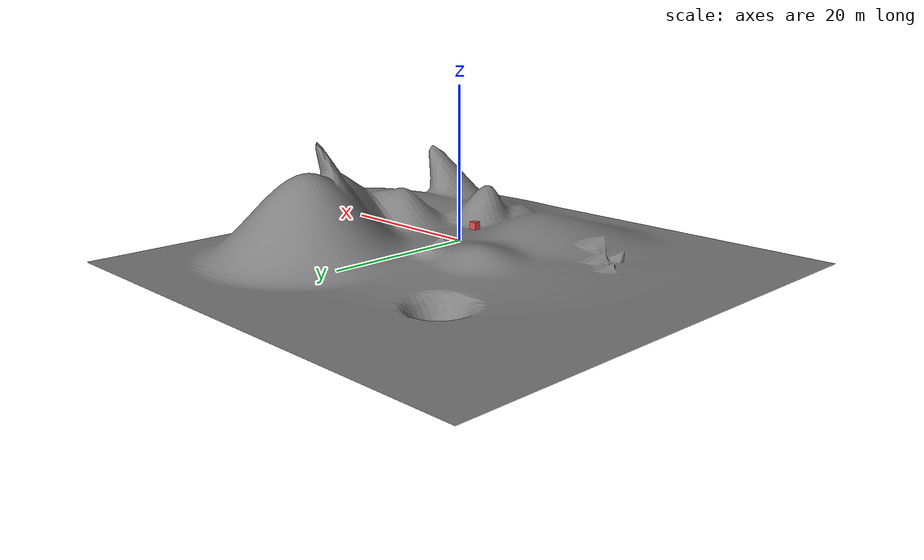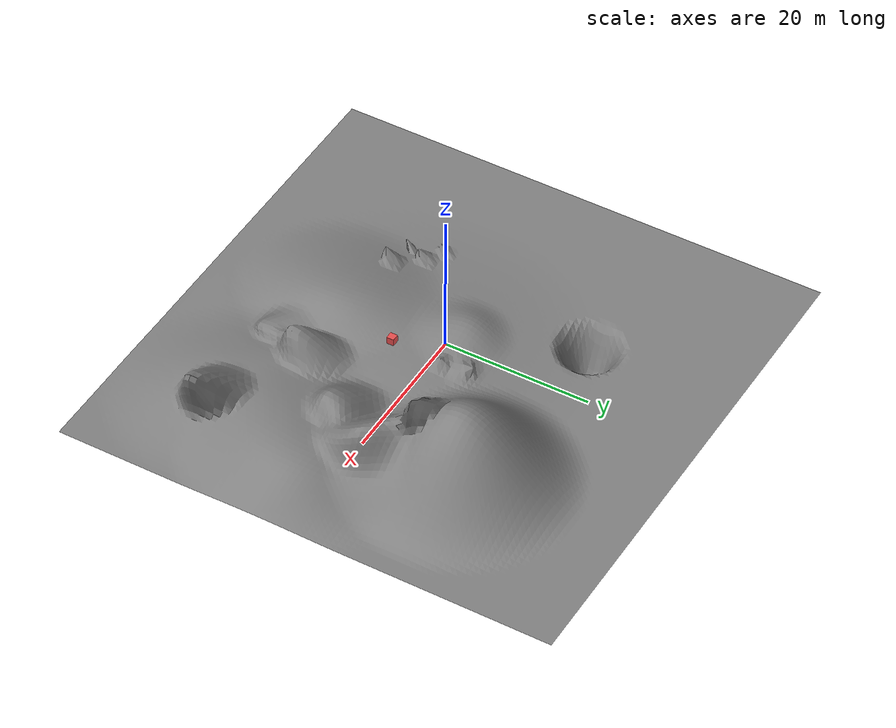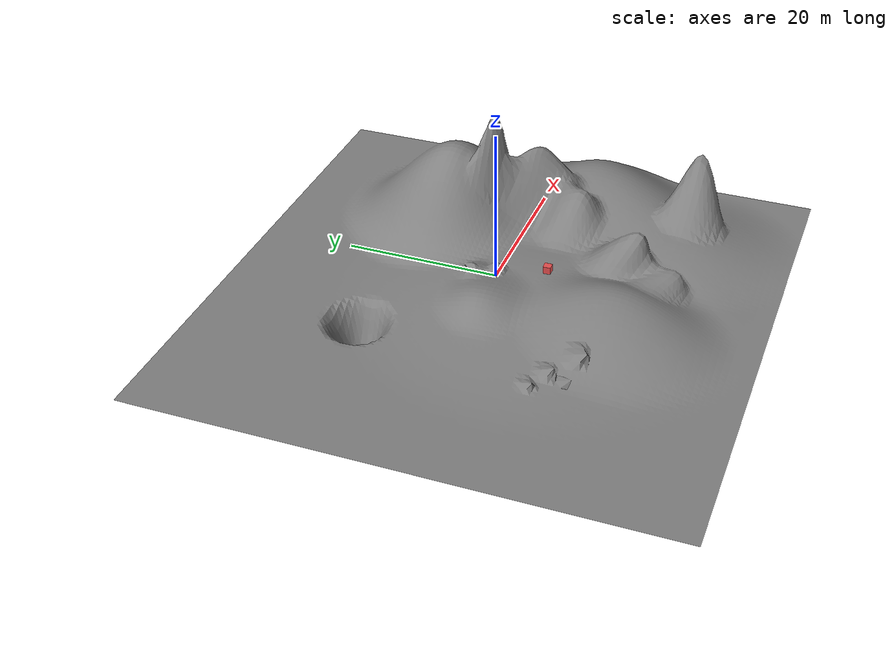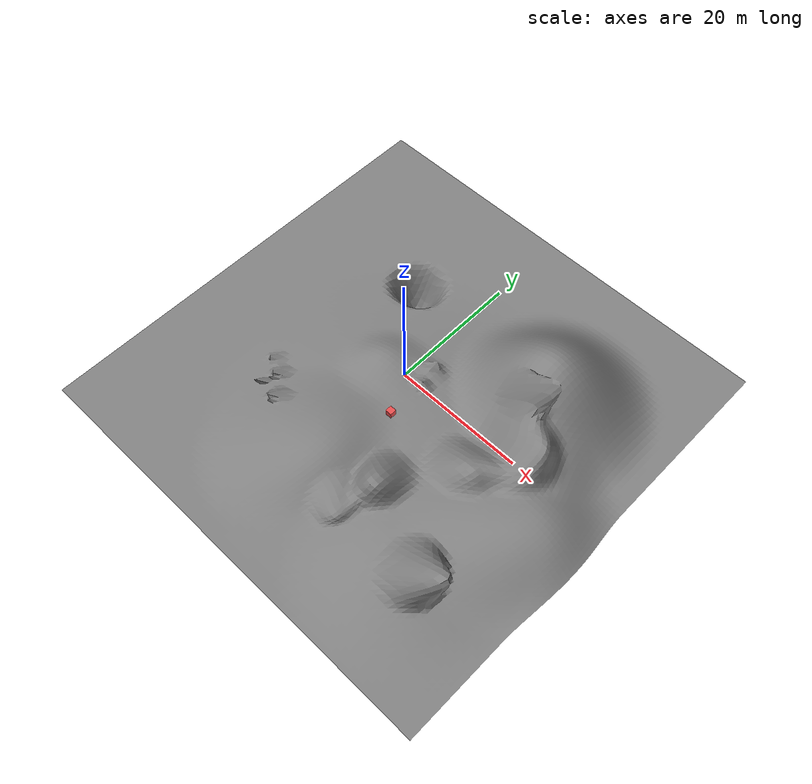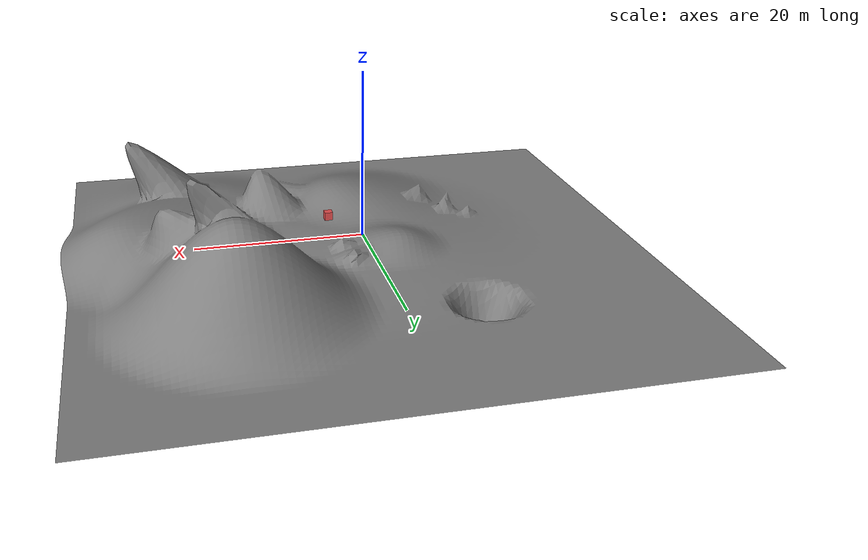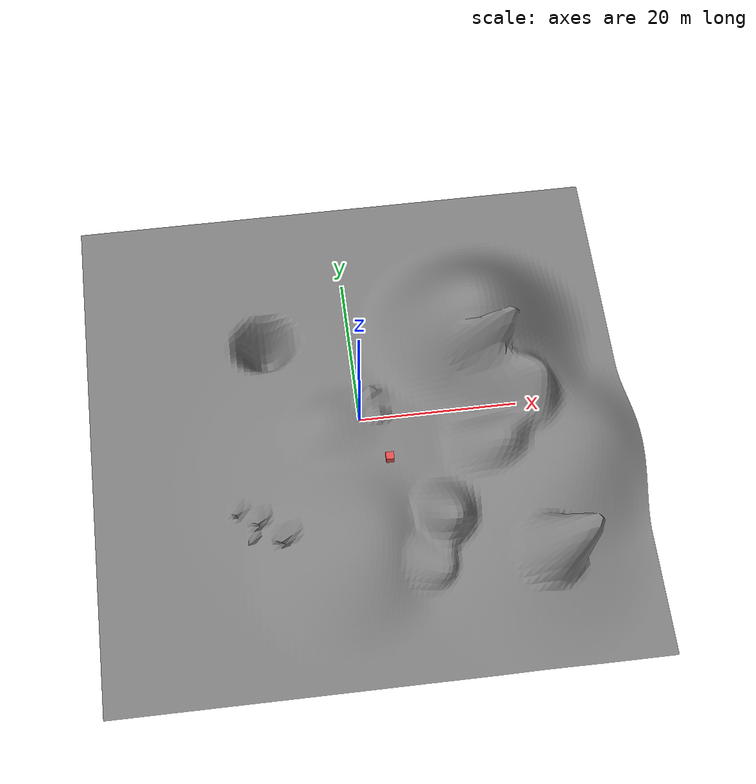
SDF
<!-- export IGN_GAZEBO_RESOURCE_PATH="~/cohort_ws/src/arcs_cohort_gazebo_sim/worlds/assets/models" -->

<sdf version='1.10'>
  <world name="empty_no_ground">
    <physics name='1ms' type='ignored'>
      <max_step_size>0.001</max_step_size>
      <real_time_factor>1</real_time_factor>
      <real_time_update_rate>1000</real_time_update_rate>
    </physics>
    <plugin name='gz::sim::systems::Physics' filename='gz-sim-physics-system'/>
    <plugin name='gz::sim::systems::UserCommands' filename='gz-sim-user-commands-system'/>
    <plugin name='gz::sim::systems::SceneBroadcaster' filename='gz-sim-scene-broadcaster-system'/>
    <plugin name='gz::sim::systems::Sensors' filename='gz-sim-sensors-system'>
      <render_engine>ogre2</render_engine>
    </plugin>
    <plugin name='gz::sim::systems::Imu' filename='gz-sim-imu-system'/>
    <plugin name='gz::sim::systems::Contact' filename='gz-sim-contact-system'/>
    <gravity>0 0 -9.8000000000000007</gravity>
    <magnetic_field>5.5644999999999998e-06 2.2875799999999999e-05 -4.2388400000000002e-05</magnetic_field>
    <atmosphere type='adiabatic'/>
    <scene>
      <ambient>0.400000006 0.400000006 0.400000006 1</ambient>
      <background>0.699999988 0.699999988 0.699999988 1</background>
      <shadows>true</shadows>
    </scene>
    <model name='box'>
      <pose>3.0805146070100271 -5.8725674478493666 0.49999999990199806 6.2287739151293738e-22 9.3279666454713669e-22 -3.6315533669320137e-22</pose>
      <link name='box_link'>
        <inertial>
          <inertia>
            <ixx>0.16666</ixx>
            <ixy>0</ixy>
            <ixz>0</ixz>
            <iyy>0.16666</iyy>
            <iyz>0</iyz>
            <izz>0.16666</izz>
          </inertia>
          <mass>1</mass>
          <pose>0 0 0 0 0 0</pose>
        </inertial>
        <collision name='box_collision'>
          <geometry>
            <box>
              <size>1 1 1</size>
            </box>
          </geometry>
          <surface>
            <friction>
              <ode/>
            </friction>
            <bounce/>
            <contact/>
          </surface>
        </collision>
        <visual name='box_visual'>
          <geometry>
            <box>
              <size>1 1 1</size>
            </box>
          </geometry>
          <material>
            <ambient>0.8 0.2 0.2 1</ambient>
            <diffuse>0.9 0.3 0.3 1</diffuse>
            <specular>1 1 1 1</specular>
          </material>
        </visual>
        <pose>0 0 0 0 0 0</pose>
        <enable_wind>false</enable_wind>
      </link>
      <static>false</static>
      <self_collide>false</self_collide>
    </model>
    <light name='sun' type='directional'>
      <pose>0 0 10 0 0 0</pose>
      <cast_shadows>true</cast_shadows>
      <intensity>1</intensity>
      <direction>-0.5 0.10000000000000001 -0.90000000000000002</direction>
      <diffuse>0.800000012 0.800000012 0.800000012 1</diffuse>
      <specular>0.200000003 0.200000003 0.200000003 1</specular>
      <attenuation>
        <range>1000</range>
        <linear>0.01</linear>
        <constant>0.90000000000000002</constant>
        <quadratic>0.001</quadratic>
      </attenuation>
      <spot>
        <inner_angle>0</inner_angle>
        <outer_angle>0</outer_angle>
        <falloff>0</falloff>
      </spot>
    </light>
    <include>
      <uri>
        model://TerrainTest.sdf
      </uri>
      <pose>0 0 -3 1.57 0 0</pose>
    </include>
  </world>
</sdf>

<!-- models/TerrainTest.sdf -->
<sdf version="1.5">
    <model name="ground_plane">
        <static>true</static>
        <link name="link">
            <visual name="visual">
                <geometry>
                    <mesh>
                        <uri>
                            model://TerrainTest.obj
                        </uri>
                    </mesh>
                </geometry>
                <material>
                    <ambient>0.5 0.5 0.5 1</ambient>
                    <diffuse>0.5 0.5 0.5 1</diffuse>
                    <specular>1 1 1 1</specular>
                  </material>
            </visual>
            <collision name="collision">
                <geometry>
                    <mesh>
                        <uri>
                            model://TerrainTest.obj
                        </uri>
                    </mesh>
                </geometry>
            </collision>
        </link>
    </model>
</sdf>
